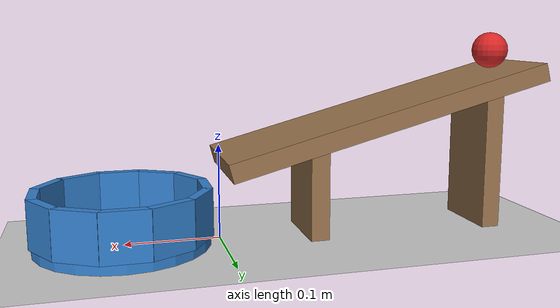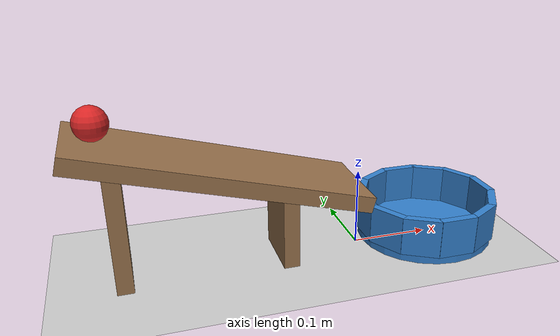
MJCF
<mujoco model="ball_ramp_cup">
  <option timestep="0.002" gravity="0 0 -9.81" integrator="implicitfast"/>

  <visual>
    <global offwidth="1280" offheight="720"/>
  </visual>

  <asset>
    <material name="floor_mat" rgba="0.8 0.8 0.8 1"/>
    <material name="ramp_mat" rgba="0.6 0.45 0.3 1"/>
    <material name="cup_mat" rgba="0.2 0.5 0.8 1"/>
    <material name="ball_mat" rgba="0.85 0.15 0.15 1"/>
  </asset>

  <worldbody>
    <light name="key_light" pos="0.3 -0.5 1.2" dir="-0.2 0.4 -1" diffuse="0.8 0.8 0.8"/>
    <light name="fill_light" pos="-0.5 0.5 1.0" dir="0.4 -0.4 -1" diffuse="0.4 0.4 0.4"/>

    <geom name="floor" type="plane" size="1 1 0.1" pos="0 0 0" material="floor_mat"/>

    <!-- Ramp: 0.36 m long, tilted 15 deg, top surface descends toward +x, lower lip top edge at (0, 0.09) -->
    <geom name="ramp_deck" type="box" size="0.18 0.06 0.01" pos="-0.17645 0 0.12693" euler="0 15 0" friction="1 0.005 0.0001" material="ramp_mat"/>
    <geom name="ramp_post_high" type="box" size="0.01 0.04 0.075" pos="-0.30 0 0.075" material="ramp_mat"/>
    <geom name="ramp_post_low" type="box" size="0.01 0.04 0.048" pos="-0.10 0 0.048" material="ramp_mat"/>

    <!-- Cup: base disc plus a 12-segment wall ring, inner radius 0.08 m, rim at z = 0.06 -->
    <body name="cup" pos="0.10 0 0">
      <geom name="cup_base" type="cylinder" size="0.09 0.005" pos="0 0 0.005" friction="1 0.005 0.005" material="cup_mat"/>
      <geom name="cup_wall_0" type="box" size="0.005 0.024 0.025" pos="0.085 0 0.035" euler="0 0 0" material="cup_mat"/>
      <geom name="cup_wall_1" type="box" size="0.005 0.024 0.025" pos="0.07361 0.0425 0.035" euler="0 0 30" material="cup_mat"/>
      <geom name="cup_wall_2" type="box" size="0.005 0.024 0.025" pos="0.0425 0.07361 0.035" euler="0 0 60" material="cup_mat"/>
      <geom name="cup_wall_3" type="box" size="0.005 0.024 0.025" pos="0 0.085 0.035" euler="0 0 90" material="cup_mat"/>
      <geom name="cup_wall_4" type="box" size="0.005 0.024 0.025" pos="-0.0425 0.07361 0.035" euler="0 0 120" material="cup_mat"/>
      <geom name="cup_wall_5" type="box" size="0.005 0.024 0.025" pos="-0.07361 0.0425 0.035" euler="0 0 150" material="cup_mat"/>
      <geom name="cup_wall_6" type="box" size="0.005 0.024 0.025" pos="-0.085 0 0.035" euler="0 0 180" material="cup_mat"/>
      <geom name="cup_wall_7" type="box" size="0.005 0.024 0.025" pos="-0.07361 -0.0425 0.035" euler="0 0 210" material="cup_mat"/>
      <geom name="cup_wall_8" type="box" size="0.005 0.024 0.025" pos="-0.0425 -0.07361 0.035" euler="0 0 240" material="cup_mat"/>
      <geom name="cup_wall_9" type="box" size="0.005 0.024 0.025" pos="0 -0.085 0.035" euler="0 0 270" material="cup_mat"/>
      <geom name="cup_wall_10" type="box" size="0.005 0.024 0.025" pos="0.0425 -0.07361 0.035" euler="0 0 300" material="cup_mat"/>
      <geom name="cup_wall_11" type="box" size="0.005 0.024 0.025" pos="0.07361 -0.0425 0.035" euler="0 0 330" material="cup_mat"/>
    </body>

    <!-- Ball: radius 0.02 m, resting on the upper part of the ramp -->
    <body name="ball" pos="-0.3136 0 0.1955">
      <freejoint name="ball_free"/>
      <geom name="ball" type="sphere" size="0.02" condim="6" friction="1 0.005 0.0001" material="ball_mat"/>
    </body>
  </worldbody>

  <keyframe>
    <key name="start" qpos="-0.3136 0 0.1955 1 0 0 0" qvel="0 0 0 0 0 0"/>
  </keyframe>
</mujoco>
